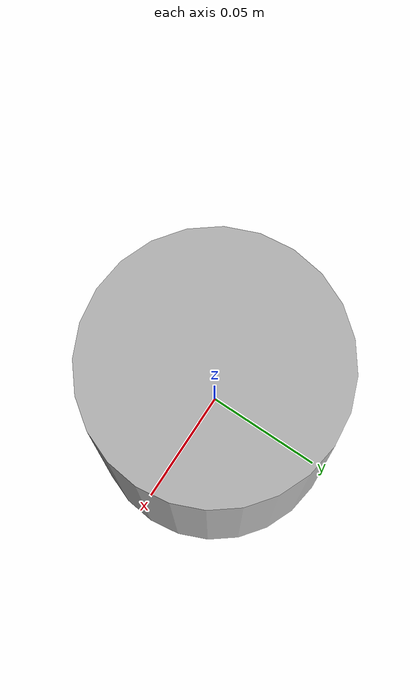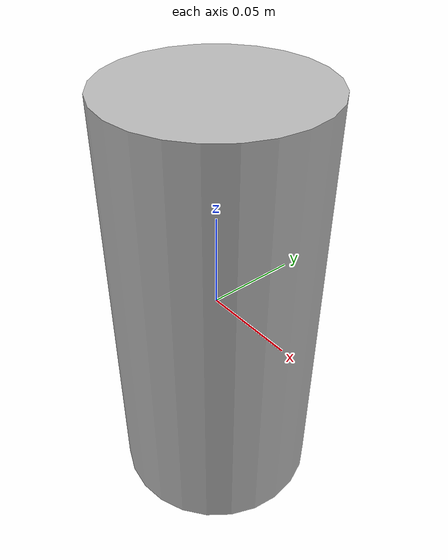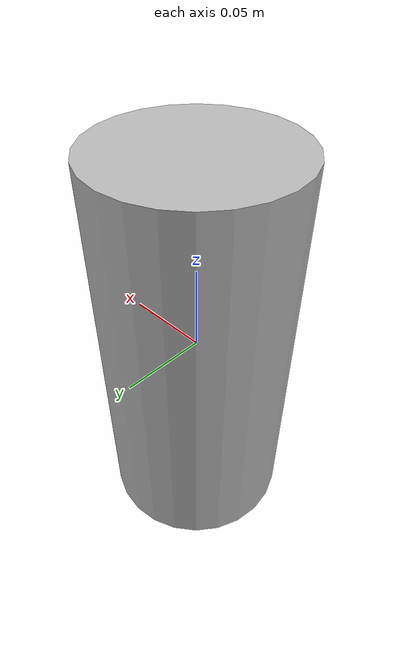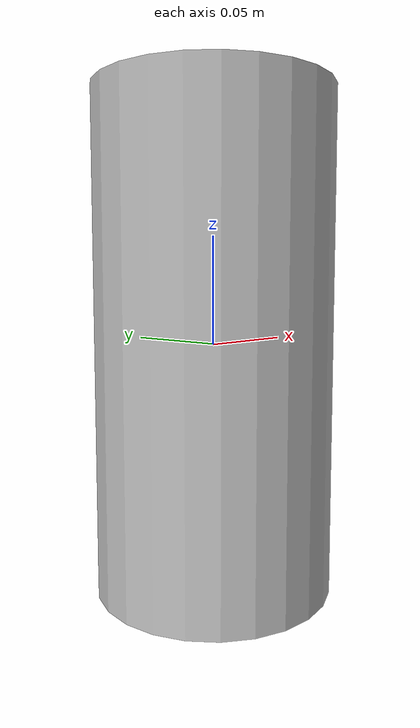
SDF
<?xml version="1.0" ?>
<sdf version="1.4">
    <model name="duff_beer">
        <link name="link">
            <inertial>
                <mass>0.390</mass>
                <inertia>
                    <ixx>0.00058</ixx>
                    <ixy>0</ixy>
                    <ixz>0</ixz>
                    <iyy>0.00058</iyy>
                    <iyz>0</iyz>
                    <izz>0.00019</izz>
                </inertia>
            </inertial>
            <pose>0 0 0 0 0 0</pose>
            <collision name="collision">
                <geometry>
                    <cylinder>
                        <radius>0.055000</radius>
                        <length>0.230000</length>
                    </cylinder>
                </geometry>
            </collision>
            <visual name="visual">
                <geometry>
                    <cylinder>
                        <radius>0.055000</radius>
                        <length>0.230000</length>
                    </cylinder>
                </geometry>
                <material>
                    <script>
                        <uri>model://duff_beer/materials/scripts</uri>
                        <uri>model://duff_beer/materials/textures</uri>
                        <name>DuffBeer/Diffuse</name>
                    </script>
                </material>
            </visual>
        </link>
    </model>
</sdf>
